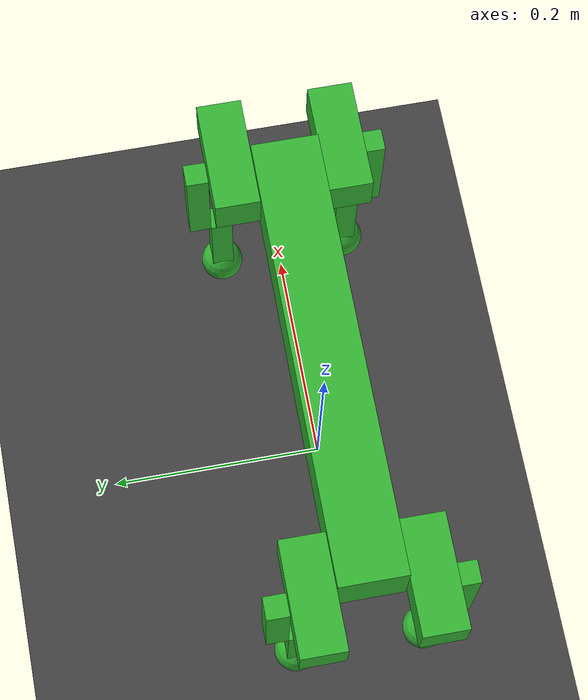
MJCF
<mujoco model="dog">
  <include file="dog.xml"/>

  <statistic center="1 -0.8 1.1" extent=".3"/>

  <visual>
    <headlight diffuse="0.6 0.6 0.6" ambient="0.1 0.1 0.1" specular="0.9 0.9 0.9"/>
    <rgba haze="0.15 0.25 0.35 1"/>
    <global azimuth="140" elevation="-20"/>
  </visual>

  <asset>
    <texture builtin='checker' height='512' name='plane' rgb1='0.2 0.2 0.2' rgb2='0.3 0.3 0.3' type='2d' width='512'/>
    <texture builtin='gradient' height='128' rgb1='0.4 0.6 0.8' rgb2='0 0 0' type='skybox' width='128'/>
    <texture type="skybox" builtin="gradient" rgb1="1 1 1" rgb2="1 1 1" width="800" height="800"/>
    <texture type="2d" name="groundplane" builtin="checker" mark="edge" rgb1="1 1 1" rgb2="1 1 1"
      markrgb="0 0 0" width="300" height="300"/>
    <material name='plane' reflectance='0.000000' texrepeat='1 1' texture='plane' texuniform='true'/>
  </asset>

  <worldbody>
    <geom conaffinity="1" contype="1" condim="3" friction="1 .1 .1" name="floor" pos="0 0 0" size="40 40 0.125" type="plane" material="plane" rgba="0.5 0.5 0.5 1.0"/>
  </worldbody>
</mujoco>

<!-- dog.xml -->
<mujoco model="dog">
    <compiler angle="radian"/>
    <option gravity="0 0 -9.81"/>

    <default>
        <geom density="500" rgba="0.2 0.7 0.2 1"/>
        <joint limited="true" range="-0.5 0.5" damping="0.2"/>
        <motor ctrllimited="true" ctrlrange="-20 20"/>
    </default>

    <worldbody>
        <!-- Torso: 0.20m x 0.03m x 0.03m (≈ 40cm x 6cm x 6cm) -->
        <body name="torso" pos="0 0 0.25">
            <geom name="torso_geom" type="box" size="0.20 0.03 0.03"/>

            <!-- ================== Front Left Leg ================== -->
            <body name="front_left_hip_block" pos="0.20 0.05 0">
                <geom type="box" size="0.05 0.02 0.02"/>

                <!-- Hip joint -->
                <joint name="front_left_hip" type="hinge" axis="1 0 0"/>
                <body name="front_left_upper_leg" pos="0 0.03 -0.06">
                    <geom type="box" size="0.01 0.01 0.05"/>

                    <!-- Knee joint -->
                    <joint name="front_left_knee" type="hinge" axis="0 1 0"/>
                    <body name="front_left_lower_leg" pos="0 -0.02 -0.1">
                        <geom type="box" size="0.01 0.01 0.05"/>

                        <!-- Ankle joint -->
                        <joint name="front_left_ankle" type="hinge" axis="0 1 0"/>
                        <geom type="sphere" size="0.02" pos="0 0 -0.05"/>
                    </body>
                </body>
            </body>

            <!-- ================== Front Right Leg ================== -->
            <body name="front_right_hip_block" pos="0.20 -0.05 0">
                <geom type="box" size="0.05 0.02 0.02"/>

                <joint name="front_right_hip" type="hinge" axis="1 0 0"/>
                <body name="front_right_upper_leg" pos="0 -0.03 -0.05">
                    <geom type="box" size="0.01 0.01 0.05"/>

                    <joint name="front_right_knee" type="hinge" axis="0 1 0"/>
                    <body name="front_right_lower_leg" pos="0 0.02 -0.1">
                        <geom type="box" size="0.01 0.01 0.05"/>

                        <joint name="front_right_ankle" type="hinge" axis="0 1 0"/>
                        <geom type="sphere" size="0.02" pos="0 0 -0.05"/>
                    </body>
                </body>
            </body>

            <!-- ================== Back Left Leg ================== -->
            <body name="back_left_hip_block" pos="-0.20 0.05 0">
                <geom type="box" size="0.05 0.02 0.02"/>

                <joint name="back_left_hip" type="hinge" axis="1 0 0"/>
                <body name="back_left_upper_leg" pos="0 0.03 -0.05">
                    <geom type="box" size="0.01 0.01 0.05"/>

                    <joint name="back_left_knee" type="hinge" axis="0 1 0"/>
                    <body name="back_left_lower_leg" pos="0 -0.02 -0.1">
                        <geom type="box" size="0.01 0.01 0.05"/>

                        <joint name="back_left_ankle" type="hinge" axis="0 1 0"/>
                        <geom type="sphere" size="0.02" pos="0 0 -0.05"/>
                    </body>
                </body>
            </body>

            <!-- ================== Back Right Leg ================== -->
            <body name="back_right_hip_block" pos="-0.20 -0.05 0">
                <geom type="box" size="0.05 0.02 0.02"/>

                <joint name="back_right_hip" type="hinge" axis="1 0 0"/>
                <body name="back_right_upper_leg" pos="0 -0.03 -0.05">
                    <geom type="box" size="0.01 0.01 0.05"/>

                    <joint name="back_right_knee" type="hinge" axis="0 1 0"/>
                    <body name="back_right_lower_leg" pos="0 0.02 -0.1">
                        <geom type="box" size="0.01 0.01 0.05"/>

                        <joint name="back_right_ankle" type="hinge" axis="0 1 0"/>
                        <geom type="sphere" size="0.02" pos="0 0 -0.05"/>
                    </body>
                </body>
            </body>
        </body>
    </worldbody>

    <!-- Actuators: 12 motors -->
    <actuator>
        <motor joint="front_left_hip"/>
        <motor joint="front_left_knee"/>
        <motor joint="front_left_ankle"/>

        <motor joint="front_right_hip"/>
        <motor joint="front_right_knee"/>
        <motor joint="front_right_ankle"/>

        <motor joint="back_left_hip"/>
        <motor joint="back_left_knee"/>
        <motor joint="back_left_ankle"/>

        <motor joint="back_right_hip"/>
        <motor joint="back_right_knee"/>
        <motor joint="back_right_ankle"/>
    </actuator>
</mujoco>
